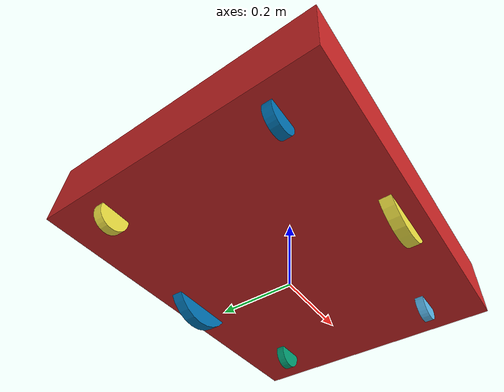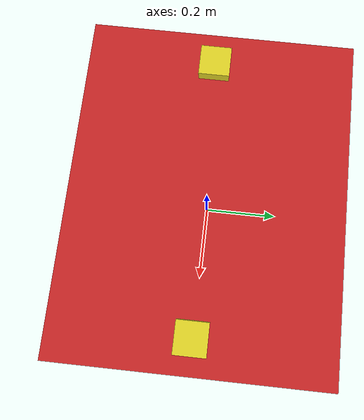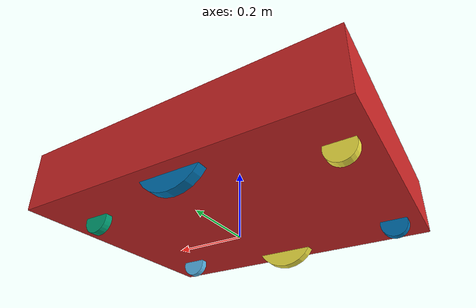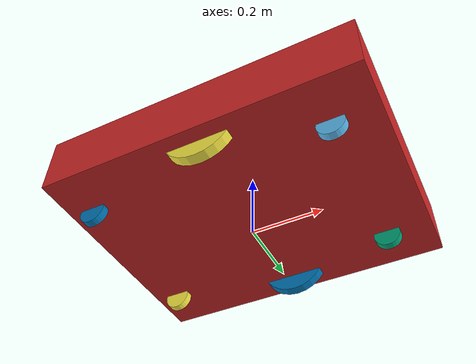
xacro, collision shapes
<?xml version="1.0" ?>
<robot name="moobot" xmlns:xacro="http://ros.org/wiki/xacro">
  <xacro:include filename="$(find moobot_description)/urdf/common_properties.xacro"/>
  <xacro:include filename="$(find moobot_description)/urdf/moobot.gazebo.xacro"/>

<!-- AGV Base -->

<link name="base_link">
    <visual>
      <origin xyz="0 0 0.100" rpy="0 0 1.5758"/>
      <geometry>
        <mesh filename="package://moobot_description/mesh/agv_base_conveyor.stl" scale="0.001 0.001 0.001"/>
      </geometry>
    </visual>

    <collision>
      <origin xyz="0 0 0.132501" rpy="0 0 0"/>
      <geometry>
        <box size="0.877615 0.701947 0.17"/>
      </geometry>
    </collision>

    <inertial>
      <origin xyz="0 0 0.1562185" rpy="0 0 0"/>
      <mass value="61"/>
      <inertia ixx="2.745" ixy="0" ixz="0"
               iyy="4.1556" iyz="0"
               izz="6.42" />
    </inertial>
  </link>

<link name="base_footprint"/>

  <joint name="base_joint" type="fixed">
    <parent link="base_footprint"/>
    <child link="base_link" />
    <origin xyz="0 0 0" rpy="0 0 0"/>
  </joint>

<link name="imu_link"/>

  <joint name="imu_joint" type="fixed">
    <parent link="base_link"/>
    <child link="imu_link" />
    <origin xyz="0 0 0" rpy="0 0 0"/>
  </joint>

<!-- Wheels -->

  <!-- Main -->
    <joint name="right_wheel_joint" type="continuous">
    <parent link="base_link"/>
    <child link="right_wheel_link"/>
    <origin xyz="0 -0.296 0.1" rpy="-1.570796 0 0"/>
    <axis xyz="0 0 1"/>
    <dynamics damping="1" friction="0"/>
    <limit effort="2" velocity="1.0"/>
    </joint>

<link name="right_wheel_link">
    <visual>
      <origin xyz="0 0 0" rpy="0 0 0"/>
      <geometry>
        <cylinder length="0.03" radius="0.1"/>
      </geometry>
    </visual>

    <collision>
      <origin xyz="0 0 0" rpy="0 0 0"/>
      <geometry>
        <cylinder length="0.03" radius="0.1"/>
      </geometry>
    </collision>

    <inertial>
      <origin xyz="0 0 0" rpy="0 0 0"/>
      <mass value="1"/>
      <inertia ixx="0.0025750" ixy="0" ixz="0"
               iyy="0.0025750" iyz="0"
               izz="0.0050000" />
    </inertial>
  </link>

    <joint name="left_wheel_joint" type="continuous">
    <parent link="base_link"/>
    <child link="left_wheel_link"/>
    <origin xyz="0 0.296 0.1" rpy="-1.570796 0 0"/>
    <axis xyz="0 0 1"/>
    <dynamics damping="1" friction="0"/>
    <limit effort="2" velocity="1.0"/>
    </joint>

<link name="left_wheel_link">
    <visual>
      <origin xyz="0 0 0" rpy="0 0 0"/>
      <geometry>
        <cylinder length="0.03" radius="0.1"/>
      </geometry>
    </visual>

    <collision>
      <origin xyz="0 0 0" rpy="0 0 0"/>
      <geometry>
        <cylinder length="0.03" radius="0.1"/>
      </geometry>
    </collision>

    <inertial>
      <origin xyz="0 0 0" rpy="0 0 0"/>
      <mass value="1"/>
      <inertia ixx="0.0025750" ixy="0" ixz="0"
               iyy="0.0025750" iyz="0"
               izz="0.0050000" />
    </inertial>
  </link>

<!-- Caster Carriers -->

  <joint name="FRCC_joint" type="continuous">
    <parent link="base_link"/>
    <child link="FRCC_link"/>
    <origin xyz="0.34075 -0.219215 0.11955" rpy="-1.570796 0 0"/>
    <axis xyz="0 1 0"/>
    </joint>

<link name="FRCC_link">
    <visual>
      <origin xyz="0 0 0" rpy="0 0 0"/>
      <geometry>
        <mesh filename="package://moobot_description/mesh/avare_tutucu_coarse.stl" scale="0.001 0.001 0.001"/>
      </geometry>
    </visual>

    <collision>
      <origin xyz="0 0.0305 0" rpy="0 0 0"/>
      <geometry>
        <box size="0.020 0.020 0.020"/>
      </geometry>
    </collision>

    <inertial>
      <origin xyz="0 0.0505 0" rpy="0 0 0"/>
      <mass value="0.1"/>
      <inertia ixx="0.00007" ixy="0" ixz="0"
               iyy="0.0001" iyz="0"
               izz="0.00007" />
    </inertial>
  </link>

  <joint name="FLCC_joint" type="continuous">
    <parent link="base_link"/>
    <child link="FLCC_link"/>
    <origin xyz="0.34075 0.219215 0.11955" rpy="-1.570796 0 0"/>
    <axis xyz="0 1 0"/>
    </joint>

<link name="FLCC_link">
    <visual>
      <origin xyz="0 0 0" rpy="0 0 0"/>
      <geometry>
        <mesh filename="package://moobot_description/mesh/avare_tutucu_coarse.stl" scale="0.001 0.001 0.001"/>
      </geometry>
    </visual>

    <collision>
      <origin xyz="0 0.0305 0" rpy="0 0 0"/>
      <geometry>
        <box size="0.020 0.020 0.020"/>
      </geometry>
    </collision>

    <inertial>
      <origin xyz="0 0.0505 0" rpy="0 0 0"/>
      <mass value="0.1"/>
      <inertia ixx="0.00007" ixy="0" ixz="0"
               iyy="0.0001" iyz="0"
               izz="0.00007" />
    </inertial>
  </link>

  <joint name="RLCC_joint" type="continuous">
    <parent link="base_link"/>
    <child link="RLCC_link"/>
    <origin xyz="-0.34075 0.219215 0.11955" rpy="-1.570796 0 0"/>
    <axis xyz="0 1 0"/>
    </joint>

<link name="RLCC_link">
    <visual>
      <origin xyz="0 0 0" rpy="0 0 0"/>
      <geometry>
        <mesh filename="package://moobot_description/mesh/avare_tutucu_coarse.stl" scale="0.001 0.001 0.001"/>
      </geometry>
    </visual>

    <collision>
      <origin xyz="0 0.0305 0" rpy="0 0 0"/>
      <geometry>
        <box size="0.020 0.020 0.020"/>
      </geometry>
    </collision>

    <inertial>
      <origin xyz="0 0.0505 0" rpy="0 0 0"/>
      <mass value="0.1"/>
      <inertia ixx="0.00007" ixy="0" ixz="0"
               iyy="0.0001" iyz="0"
               izz="0.00007" />
    </inertial>
  </link>

    <joint name="RRCC_joint" type="continuous">
    <parent link="base_link"/>
    <child link="RRCC_link"/>
    <origin xyz="-0.34075 -0.219215 0.11955" rpy="-1.570796 0 0"/>
    <axis xyz="0 1 0"/>
    </joint>

<link name="RRCC_link">
    <visual>
      <origin xyz="0 0 0" rpy="0 0 0"/>
      <geometry>
        <mesh filename="package://moobot_description/mesh/avare_tutucu_coarse.stl" scale="0.001 0.001 0.001"/>
      </geometry>
    </visual>

    <collision>
      <origin xyz="0 0.0305 0" rpy="0 0 0"/>
      <geometry>
        <box size="0.020 0.020 0.020"/>
      </geometry>
    </collision>

    <inertial>
      <origin xyz="0 0.0505 0" rpy="0 0 0"/>
      <mass value="0.1"/>
      <inertia ixx="0.00007" ixy="0" ixz="0"
               iyy="0.0001" iyz="0"
               izz="0.00007" />
    </inertial>
  </link>

<!-- Caster Wheels -->

    <joint name="FRC_joint" type="continuous">
    <parent link="FRCC_link"/>
    <child link="FRC_link"/>
    <origin xyz="-0.0265 0.08205 0" rpy="1.570796 -1.570796 0"/>
    <axis xyz="1 0 0"/>
    </joint>

<link name="FRC_link">
    <visual>
      <origin xyz="0 0 0" rpy="0 0 0"/>
      <geometry>
        <mesh filename="package://moobot_description/mesh/avare_teker_coarse.stl" scale="0.001 0.001 0.001"/>
      </geometry>
    </visual>

    <collision>
      <origin xyz="0 0 0" rpy="0 1.570796 0"/>
      <geometry>
        <cylinder length="0.022" radius="0.0375"/>
      </geometry>
    </collision>

    <inertial>
      <origin xyz="0 0 0" rpy="0 0 0"/>
      <mass value="0.1"/>
      <inertia ixx="0.0002" ixy="0" ixz="0"
               iyy="0.0002" iyz="0"
               izz="0.0002" />
    </inertial>
  </link>

  <joint name="FLC_joint" type="continuous">
    <parent link="FLCC_link"/>
    <child link="FLC_link"/>
    <origin xyz="-0.0265 0.08205 0" rpy="1.570796 -1.570796 0"/>
    <axis xyz="1 0 0"/>
  </joint>

<link name="FLC_link">
    <visual>
      <origin xyz="0 0 0" rpy="0 0 0"/>
      <geometry>
        <mesh filename="package://moobot_description/mesh/avare_teker_coarse.stl" scale="0.001 0.001 0.001"/>
      </geometry>
    </visual>

    <collision>
      <origin xyz="0 0 0" rpy="0 1.570796 0"/>
      <geometry>
        <cylinder length="0.022" radius="0.0375"/>
      </geometry>
    </collision>

    <inertial>
      <origin xyz="0 0 0" rpy="0 0 0"/>
      <mass value="0.1"/>
      <inertia ixx="0.0002" ixy="0" ixz="0"
               iyy="0.0002" iyz="0"
               izz="0.0002" />
    </inertial>
  </link>

  <joint name="RLC_joint" type="continuous">
    <parent link="RLCC_link"/>
    <child link="RLC_link"/>
    <origin xyz="-0.0265 0.08205 0" rpy="1.570796 -1.570796 0"/>
    <axis xyz="1 0 0"/>
  </joint>

<link name="RLC_link">
    <visual>
      <origin xyz="0 0 0" rpy="0 0 0"/>
      <geometry>
        <mesh filename="package://moobot_description/mesh/avare_teker_coarse.stl" scale="0.001 0.001 0.001"/>
      </geometry>
    </visual>

    <collision>
      <origin xyz="0 0 0" rpy="0 1.570796 0"/>
      <geometry>
        <cylinder length="0.022" radius="0.0375"/>
      </geometry>
    </collision>

    <inertial>
      <origin xyz="0 0 0" rpy="0 0 0"/>
      <mass value="0.1"/>
      <inertia ixx="0.0002" ixy="0" ixz="0"
               iyy="0.0002" iyz="0"
               izz="0.0002" />
    </inertial>
  </link>

    <joint name="RRC_joint" type="continuous">
    <parent link="RRCC_link"/>
    <child link="RRC_link"/>
    <origin xyz="-0.0265 0.08205 0" rpy="1.570796 -1.570796 0"/>
    <axis xyz="1 0 0"/>
  </joint>

<link name="RRC_link">
    <visual>
      <origin xyz="0 0 0" rpy="0 0 0"/>
      <geometry>
        <mesh filename="package://moobot_description/mesh/avare_teker_coarse.stl" scale="0.001 0.001 0.001"/>
      </geometry>
    </visual>

    <collision>
      <origin xyz="0 0 0" rpy="0 1.570796 0"/>
      <geometry>
        <cylinder length="0.022" radius="0.0375"/>
      </geometry>
    </collision>

    <inertial>
      <origin xyz="0 0 0" rpy="0 0 0"/>
      <mass value="0.1"/>
      <inertia ixx="0.0002" ixy="0" ixz="0"
               iyy="0.0002" iyz="0"
               izz="0.0002" />
    </inertial>
  </link>

<!-- Scanner -->

<!-- Front Scanner -->
<joint name="front_scan_joint" type="fixed">
    <parent link="base_link"/>
    <child link="front_scan_link"/>
    <origin xyz="0.35 0 0.2232185" rpy="0 0 0"/>
  </joint>

  <link name="front_scan_link">
    <visual>
      <origin xyz="0 0 -0.067" rpy="0 0 0"/>
      <geometry>
        <mesh filename="package://moobot_description/mesh/hokuyo_coarse.stl" scale="0.001 0.001 0.001"/>
      </geometry>
    </visual>

    <collision>
      <origin xyz="0 0 -0.01675" rpy="0 0 0"/>
      <geometry>
        <box size="0.080 0.080 0.080"/>
      </geometry>
    </collision>

    <inertial>
      <mass value="0.114" />
      <origin xyz="0 0 0" />
      <inertia ixx="0.001" ixy="0.0" ixz="0.0"
               iyy="0.001" iyz="0.0"
               izz="0.001" />
    </inertial>
  </link>

<!-- Rear Scanner -->
<joint name="rear_scan_joint" type="fixed">
    <parent link="base_link"/>
    <child link="rear_scan_link"/>
    <origin xyz="-0.35 -0.015 0.2232185" rpy="0 0 3.1415"/>
  </joint>

  <link name="rear_scan_link">
    <visual>
      <origin xyz="0 0 -0.067" rpy="0 0 0"/>
      <geometry>
        <mesh filename="package://moobot_description/mesh/hokuyo_coarse.stl" scale="0.001 0.001 0.001"/>
      </geometry>
    </visual>

    <collision>
      <origin xyz="0 0 -0.01675" rpy="0 0 0"/>
      <geometry>
        <box size="0.080 0.080 0.080"/>
      </geometry>
    </collision>

    <inertial>
      <mass value="0.114" />
      <origin xyz="0 0 0" />
      <inertia ixx="0.001" ixy="0.0" ixz="0.0"
               iyy="0.001" iyz="0.0"
               izz="0.001" />
    </inertial>
  </link>

</robot>
